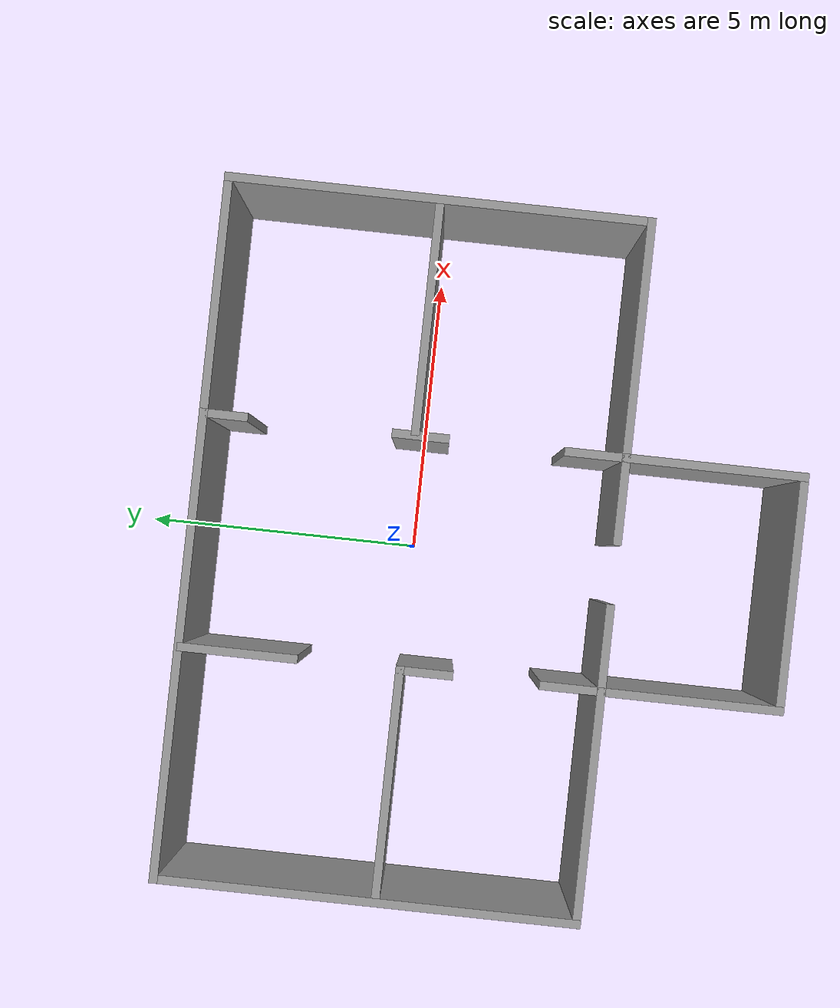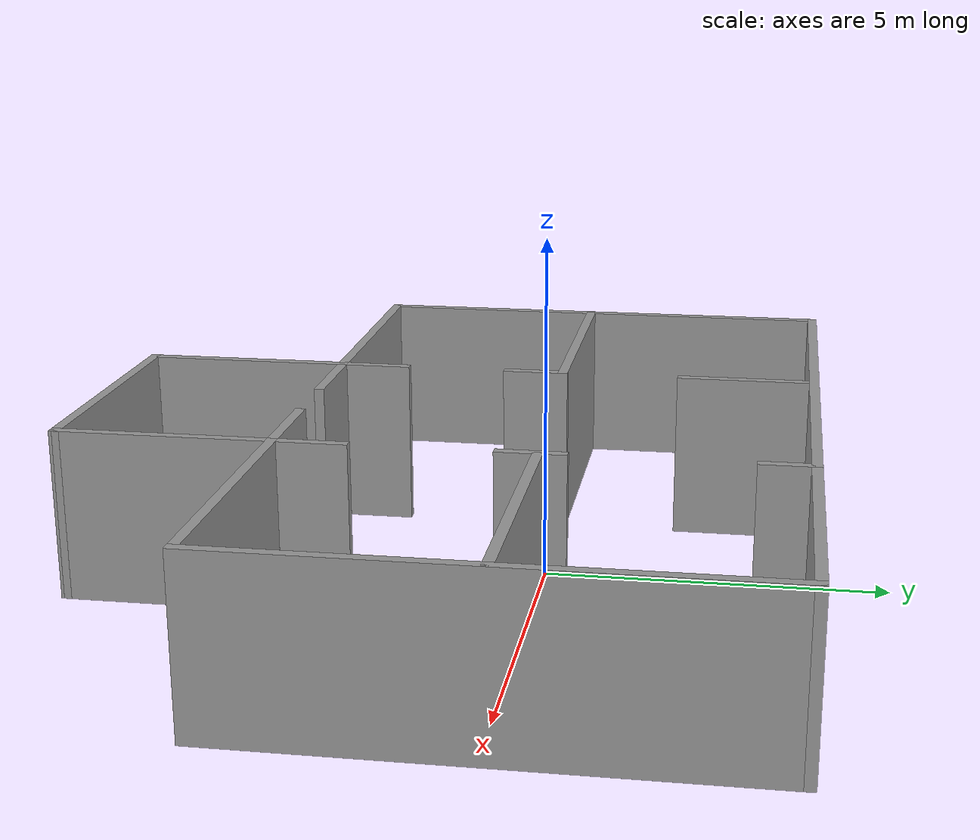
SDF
<?xml version='1.0'?>
<sdf version='1.7'>
  <model name='mieszkanie2'>
    <pose>-0.080753 -1.40251 0 0 -0 0</pose>
    <link name='Wall_18'>
      <collision name='Wall_18_Collision'>
        <geometry>
          <box>
            <size>1 0.15 2.5</size>
          </box>
        </geometry>
        <pose>0 0 1.25 0 -0 0</pose>
      </collision>
      <visual name='Wall_18_Visual'>
        <pose>0 0 1.25 0 -0 0</pose>
        <geometry>
          <box>
            <size>1 0.15 2.5</size>
          </box>
        </geometry>
        <material>
          <script>
            <uri>file://media/materials/scripts/gazebo.material</uri>
            <name>Gazebo/Grey</name>
          </script>
          <ambient>1 1 1 1</ambient>
        </material>
        <meta>
          <layer>0</layer>
        </meta>
      </visual>
      <pose>-2.06313 -1.54949 0 0 -0 -1.5708</pose>
    </link>
    <link name='Wall_22'>
      <collision name='Wall_22_Collision'>
        <geometry>
          <box>
            <size>1 0.15 2.5</size>
          </box>
        </geometry>
        <pose>0 0 1.25 0 -0 0</pose>
      </collision>
      <visual name='Wall_22_Visual'>
        <pose>0 0 1.25 0 -0 0</pose>
        <geometry>
          <box>
            <size>1 0.15 2.5</size>
          </box>
        </geometry>
        <material>
          <script>
            <uri>file://media/materials/scripts/gazebo.material</uri>
            <name>Gazebo/Grey</name>
          </script>
          <ambient>1 1 1 1</ambient>
        </material>
        <meta>
          <layer>0</layer>
        </meta>
      </visual>
      <pose>-2.06394 0.950628 0 0 -0 -1.5708</pose>
    </link>
    <link name='Wall_29'>
      <collision name='Wall_29_Collision'>
        <geometry>
          <box>
            <size>2.1 0.15 2.5</size>
          </box>
        </geometry>
        <pose>0 0 1.25 0 -0 0</pose>
      </collision>
      <visual name='Wall_29_Visual'>
        <pose>0 0 1.25 0 -0 0</pose>
        <geometry>
          <box>
            <size>2.1 0.15 2.5</size>
          </box>
        </geometry>
        <material>
          <script>
            <uri>file://media/materials/scripts/gazebo.material</uri>
            <name>Gazebo/Grey</name>
          </script>
          <ambient>1 1 1 1</ambient>
        </material>
        <meta>
          <layer>0</layer>
        </meta>
      </visual>
      <pose>-2.06444 4.20037 0 0 -0 -1.5708</pose>
    </link>
    <link name='Wall_33'>
      <collision name='Wall_33_Collision'>
        <geometry>
          <box>
            <size>1.595 0.15 2.5</size>
          </box>
        </geometry>
        <pose>0 0 1.25 0 -0 0</pose>
      </collision>
      <visual name='Wall_33_Visual'>
        <pose>0 0 1.25 0 -0 0</pose>
        <geometry>
          <box>
            <size>1.595 0.15 2.5</size>
          </box>
        </geometry>
        <material>
          <script>
            <uri>file://media/materials/scripts/gazebo.material</uri>
            <name>Gazebo/Grey</name>
          </script>
          <ambient>1 1 1 1</ambient>
        </material>
        <meta>
          <layer>0</layer>
        </meta>
      </visual>
      <pose>1.27751 -2.12499 0 0 -0 3.14159</pose>
    </link>
    <link name='Wall_35'>
      <collision name='Wall_35_Collision'>
        <geometry>
          <box>
            <size>1.595 0.15 2.5</size>
          </box>
        </geometry>
        <pose>0 0 1.25 0 -0 0</pose>
      </collision>
      <visual name='Wall_35_Visual'>
        <pose>0 0 1.25 0 -0 0</pose>
        <geometry>
          <box>
            <size>1.595 0.15 2.5</size>
          </box>
        </geometry>
        <material>
          <script>
            <uri>file://media/materials/scripts/gazebo.material</uri>
            <name>Gazebo/Grey</name>
          </script>
          <ambient>1 1 1 1</ambient>
        </material>
        <meta>
          <layer>0</layer>
        </meta>
      </visual>
      <pose>-1.34168 -2.12382 0 0 -0 0</pose>
    </link>
    <link name='Wall_37'>
      <collision name='Wall_37_Collision'>
        <geometry>
          <box>
            <size>8.25 0.15 2.5</size>
          </box>
        </geometry>
        <pose>0 0 1.25 0 -0 0</pose>
      </collision>
      <visual name='Wall_37_Visual'>
        <pose>0 0 1.25 0 -0 0</pose>
        <geometry>
          <box>
            <size>8.25 0.15 2.5</size>
          </box>
        </geometry>
        <material>
          <script>
            <uri>file://media/materials/scripts/gazebo.material</uri>
            <name>Gazebo/Grey</name>
          </script>
          <ambient>1 1 1 1</ambient>
        </material>
        <meta>
          <layer>0</layer>
        </meta>
      </visual>
      <pose>-2.04999 5.22501 0 0 -0 3.14159</pose>
    </link>
    <link name='Wall_39'>
      <collision name='Wall_39_Collision'>
        <geometry>
          <box>
            <size>7.5 0.15 2.5</size>
          </box>
        </geometry>
        <pose>0 0 1.25 0 -0 0</pose>
      </collision>
      <visual name='Wall_39_Visual'>
        <pose>0 0 1.25 0 -0 0</pose>
        <geometry>
          <box>
            <size>7.5 0.15 2.5</size>
          </box>
        </geometry>
        <material>
          <script>
            <uri>file://media/materials/scripts/gazebo.material</uri>
            <name>Gazebo/Grey</name>
          </script>
          <ambient>1 1 1 1</ambient>
        </material>
        <meta>
          <layer>0</layer>
        </meta>
      </visual>
      <pose>-6.09999 1.55001 0 0 -0 -1.5708</pose>
    </link>
    <link name='Wall_40'>
      <collision name='Wall_40_Collision'>
        <geometry>
          <box>
            <size>4.18581 0.15 2.5</size>
          </box>
        </geometry>
        <pose>0 0 1.25 0 -0 0</pose>
      </collision>
      <visual name='Wall_40_Visual'>
        <pose>0 0 1.25 0 -0 0</pose>
        <geometry>
          <box>
            <size>4.18581 0.15 2.5</size>
          </box>
        </geometry>
        <material>
          <script>
            <uri>file://media/materials/scripts/gazebo.material</uri>
            <name>Gazebo/Grey</name>
          </script>
          <ambient>1 1 1 1</ambient>
        </material>
        <meta>
          <layer>0</layer>
        </meta>
      </visual>
      <pose>-4.08209 -2.12441 0 0 -0 0.000289</pose>
    </link>
    <link name='Wall_42'>
      <collision name='Wall_42_Collision'>
        <geometry>
          <box>
            <size>3.25 0.15 2.5</size>
          </box>
        </geometry>
        <pose>0 0 1.25 0 -0 0</pose>
      </collision>
      <visual name='Wall_42_Visual'>
        <pose>0 0 1.25 0 -0 0</pose>
        <geometry>
          <box>
            <size>3.25 0.15 2.5</size>
          </box>
        </geometry>
        <material>
          <script>
            <uri>file://media/materials/scripts/gazebo.material</uri>
            <name>Gazebo/Grey</name>
          </script>
          <ambient>1 1 1 1</ambient>
        </material>
        <meta>
          <layer>0</layer>
        </meta>
      </visual>
      <pose>-2.06418 -3.67382 0 0 -0 -1.5708</pose>
    </link>
    <link name='Wall_45'>
      <collision name='Wall_45_Collision'>
        <geometry>
          <box>
            <size>3.25 0.15 2.5</size>
          </box>
        </geometry>
        <pose>0 0 1.25 0 -0 0</pose>
      </collision>
      <visual name='Wall_45_Visual'>
        <pose>0 0 1.25 0 -0 0</pose>
        <geometry>
          <box>
            <size>3.25 0.15 2.5</size>
          </box>
        </geometry>
        <material>
          <script>
            <uri>file://media/materials/scripts/gazebo.material</uri>
            <name>Gazebo/Grey</name>
          </script>
          <ambient>1 1 1 1</ambient>
        </material>
        <meta>
          <layer>0</layer>
        </meta>
      </visual>
      <pose>2.00001 -3.67499 0 0 -0 -1.5708</pose>
    </link>
    <link name='Wall_46'>
      <collision name='Wall_46_Collision'>
        <geometry>
          <box>
            <size>4.2142 0.15 2.5</size>
          </box>
        </geometry>
        <pose>0 0 1.25 0 -0 0</pose>
      </collision>
      <visual name='Wall_46_Visual'>
        <pose>0 0 1.25 0 -0 0</pose>
        <geometry>
          <box>
            <size>4.2142 0.15 2.5</size>
          </box>
        </geometry>
        <material>
          <script>
            <uri>file://media/materials/scripts/gazebo.material</uri>
            <name>Gazebo/Grey</name>
          </script>
          <ambient>1 1 1 1</ambient>
        </material>
        <meta>
          <layer>0</layer>
        </meta>
      </visual>
      <pose>-0.032087 -5.22441 0 0 -0 3.14131</pose>
    </link>
    <link name='Wall_48'>
      <collision name='Wall_48_Collision'>
        <geometry>
          <box>
            <size>4.15 0.15 2.5</size>
          </box>
        </geometry>
        <pose>0 0 1.25 0 -0 0</pose>
      </collision>
      <visual name='Wall_48_Visual'>
        <pose>0 0 1.25 0 -0 0</pose>
        <geometry>
          <box>
            <size>4.15 0.15 2.5</size>
          </box>
        </geometry>
        <material>
          <script>
            <uri>file://media/materials/scripts/gazebo.material</uri>
            <name>Gazebo/Grey</name>
          </script>
          <ambient>1 1 1 1</ambient>
        </material>
        <meta>
          <layer>0</layer>
        </meta>
      </visual>
      <pose>-4.06394 1.37563 0 0 -0 3.14159</pose>
    </link>
    <link name='Wall_52'>
      <collision name='Wall_52_Collision'>
        <geometry>
          <box>
            <size>1 0.15 2.5</size>
          </box>
        </geometry>
        <pose>0 0 1.25 0 -0 0</pose>
      </collision>
      <visual name='Wall_52_Visual'>
        <pose>0 0 1.25 0 -0 0</pose>
        <geometry>
          <box>
            <size>1 0.15 2.5</size>
          </box>
        </geometry>
        <material>
          <script>
            <uri>file://media/materials/scripts/gazebo.material</uri>
            <name>Gazebo/Grey</name>
          </script>
          <ambient>1 1 1 1</ambient>
        </material>
        <meta>
          <layer>0</layer>
        </meta>
      </visual>
      <pose>1.99942 -1.55012 0 0 -0 -1.5708</pose>
    </link>
    <link name='Wall_56'>
      <collision name='Wall_56_Collision'>
        <geometry>
          <box>
            <size>1 0.15 2.5</size>
          </box>
        </geometry>
        <pose>0 0 1.25 0 -0 0</pose>
      </collision>
      <visual name='Wall_56_Visual'>
        <pose>0 0 1.25 0 -0 0</pose>
        <geometry>
          <box>
            <size>1 0.15 2.5</size>
          </box>
        </geometry>
        <material>
          <script>
            <uri>file://media/materials/scripts/gazebo.material</uri>
            <name>Gazebo/Grey</name>
          </script>
          <ambient>1 1 1 1</ambient>
        </material>
        <meta>
          <layer>0</layer>
        </meta>
      </visual>
      <pose>1.99894 1.449 0 0 -0 -1.5708</pose>
    </link>
    <link name='Wall_60'>
      <collision name='Wall_60_Collision'>
        <geometry>
          <box>
            <size>0.75 0.15 2.5</size>
          </box>
        </geometry>
        <pose>0 0 1.25 0 -0 0</pose>
      </collision>
      <visual name='Wall_60_Visual'>
        <pose>0 0 1.25 0 -0 0</pose>
        <geometry>
          <box>
            <size>0.75 0.15 2.5</size>
          </box>
        </geometry>
        <material>
          <script>
            <uri>file://media/materials/scripts/gazebo.material</uri>
            <name>Gazebo/Grey</name>
          </script>
          <ambient>1 1 1 1</ambient>
        </material>
        <meta>
          <layer>0</layer>
        </meta>
      </visual>
      <pose>1.99877 4.82382 0 0 -0 -1.5708</pose>
    </link>
    <link name='Wall_67'>
      <collision name='Wall_67_Collision'>
        <geometry>
          <box>
            <size>4.25 0.15 2.5</size>
          </box>
        </geometry>
        <pose>0 0 1.25 0 -0 0</pose>
      </collision>
      <visual name='Wall_67_Visual'>
        <pose>0 0 1.25 0 -0 0</pose>
        <geometry>
          <box>
            <size>4.25 0.15 2.5</size>
          </box>
        </geometry>
        <material>
          <script>
            <uri>file://media/materials/scripts/gazebo.material</uri>
            <name>Gazebo/Grey</name>
          </script>
          <ambient>1 1 1 1</ambient>
        </material>
        <meta>
          <layer>0</layer>
        </meta>
      </visual>
      <pose>4.05001 -2.12499 0 0 -0 0</pose>
    </link>
    <link name='Wall_69'>
      <collision name='Wall_69_Collision'>
        <geometry>
          <box>
            <size>7.5 0.15 2.5</size>
          </box>
        </geometry>
        <pose>0 0 1.25 0 -0 0</pose>
      </collision>
      <visual name='Wall_69_Visual'>
        <pose>0 0 1.25 0 -0 0</pose>
        <geometry>
          <box>
            <size>7.5 0.15 2.5</size>
          </box>
        </geometry>
        <material>
          <script>
            <uri>file://media/materials/scripts/gazebo.material</uri>
            <name>Gazebo/Grey</name>
          </script>
          <ambient>1 1 1 1</ambient>
        </material>
        <meta>
          <layer>0</layer>
        </meta>
      </visual>
      <pose>6.10001 1.55001 0 0 -0 1.5708</pose>
    </link>
    <link name='Wall_70'>
      <collision name='Wall_70_Collision'>
        <geometry>
          <box>
            <size>4.25 0.15 2.5</size>
          </box>
        </geometry>
        <pose>0 0 1.25 0 -0 0</pose>
      </collision>
      <visual name='Wall_70_Visual'>
        <pose>0 0 1.25 0 -0 0</pose>
        <geometry>
          <box>
            <size>4.25 0.15 2.5</size>
          </box>
        </geometry>
        <material>
          <script>
            <uri>file://media/materials/scripts/gazebo.material</uri>
            <name>Gazebo/Grey</name>
          </script>
          <ambient>1 1 1 1</ambient>
        </material>
        <meta>
          <layer>0</layer>
        </meta>
      </visual>
      <pose>4.05001 5.22501 0 0 -0 3.14159</pose>
    </link>
    <link name='Wall_72'>
      <collision name='Wall_72_Collision'>
        <geometry>
          <box>
            <size>4.15 0.15 2.5</size>
          </box>
        </geometry>
        <pose>0 0 1.25 0 -0 0</pose>
      </collision>
      <visual name='Wall_72_Visual'>
        <pose>0 0 1.25 0 -0 0</pose>
        <geometry>
          <box>
            <size>4.15 0.15 2.5</size>
          </box>
        </geometry>
        <material>
          <script>
            <uri>file://media/materials/scripts/gazebo.material</uri>
            <name>Gazebo/Grey</name>
          </script>
          <ambient>1 1 1 1</ambient>
        </material>
        <meta>
          <layer>0</layer>
        </meta>
      </visual>
      <pose>4.07371 1.54558 0 0 -0 0</pose>
    </link>
    <static>1</static>
  </model>
</sdf>
